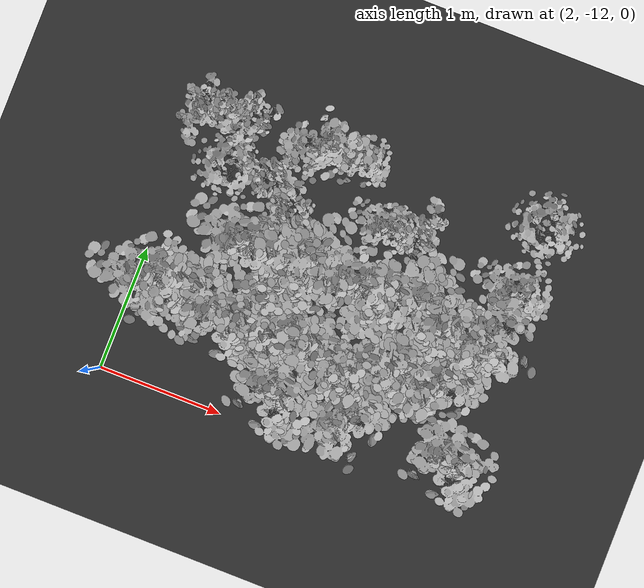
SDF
<sdf version="1.7">
 <world name="default">
  <model name="ground_plane">
   <static>1</static>
   <link name="link">
    <collision name="collision">
     <geometry><plane><normal>0 0 1</normal><size>100 100</size></plane></geometry>
     <surface>
      <contact><collide_bitmask>65535</collide_bitmask></contact>
      <friction><ode><mu>100</mu><mu2>50</mu2></ode></friction>
     </surface>
    </collision>
    <visual name="visual">
     <cast_shadows>0</cast_shadows>
     <geometry><plane><normal>0 0 1</normal><size>100 100</size></plane></geometry>
     <material>
      <ambient>0.2 0.2 0.2 1.0</ambient>
      <diffuse>0.2 0.2 0.2 1.0</diffuse>
      <specular>0.2 0.2 0.2 1.0</specular>
      <emissive>0.2 0.2 0.2 1.0</emissive>
     </material>
    </visual>
   </link>
  </model>
  <model name="ground">
   <pose>5 -0.5 0.01  3.141592654 0 0</pose>
   <static>true</static>
   <link name="body">
    <visual name="visual">
     <cast_shadows>0</cast_shadows>
     <geometry>
      <mesh><uri>file:///home/ifcosta/final_ws/src/cnn_line/worlds/models/ground.obj</uri></mesh>
     </geometry>
    </visual>
   </link>
  </model>
  <model name="plt_30008">
   <pose>2.4 -10.2 0.0127 0.0 0.0 0.20575</pose>
   <static>true</static>
   <link name="body">
    <visual name="visual">
     <geometry>
      <mesh><uri>file:///home/ifcosta/final_ws/src/cnn_line/worlds/models/plant35.obj</uri></mesh>
     </geometry>
    </visual>
   </link>
  </model>
  <model name="plt_30009">
   <pose>2.73 -10.2 0.0151 0.0 0.0 -1.1172</pose>
   <static>true</static>
   <link name="body">
    <visual name="visual">
     <geometry>
      <mesh><uri>file:///home/ifcosta/final_ws/src/cnn_line/worlds/models/plant33.obj</uri></mesh>
     </geometry>
    </visual>
   </link>
  </model>
  <model name="plt_30010">
   <pose>2.98 -10.3 0.0139 0.0 0.0 -0.027045</pose>
   <static>true</static>
   <link name="body">
    <visual name="visual">
     <geometry>
      <mesh><uri>file:///home/ifcosta/final_ws/src/cnn_line/worlds/models/plant34.obj</uri></mesh>
     </geometry>
    </visual>
   </link>
  </model>
  <model name="plt_30012">
   <pose>3.68 -10.2 0.0168 0.0 0.0 -0.72424</pose>
   <static>true</static>
   <link name="body">
    <visual name="visual">
     <geometry>
      <mesh><uri>file:///home/ifcosta/final_ws/src/cnn_line/worlds/models/plant31.obj</uri></mesh>
     </geometry>
    </visual>
   </link>
  </model>
  <model name="plt_30013">
   <pose>3.91 -10.2 0.0149 0.0 0.0 -1.329</pose>
   <static>true</static>
   <link name="body">
    <visual name="visual">
     <geometry>
      <mesh><uri>file:///home/ifcosta/final_ws/src/cnn_line/worlds/models/plant33.obj</uri></mesh>
     </geometry>
    </visual>
   </link>
  </model>
  <model name="plt_30016">
   <pose>4.79 -10.3 0.0151 0.0 0.0 0.59571</pose>
   <static>true</static>
   <link name="body">
    <visual name="visual">
     <geometry>
      <mesh><uri>file:///home/ifcosta/final_ws/src/cnn_line/worlds/models/plant36.obj</uri></mesh>
     </geometry>
    </visual>
   </link>
  </model>
  <model name="plt_30041">
   <pose>2.08 -9.76 0.0162 0.0 0.0 0.15549</pose>
   <static>true</static>
   <link name="body">
    <visual name="visual">
     <geometry>
      <mesh><uri>file:///home/ifcosta/final_ws/src/cnn_line/worlds/models/plant34.obj</uri></mesh>
     </geometry>
    </visual>
   </link>
  </model>
  <model name="plt_30042">
   <pose>2.45 -9.76 0.0149 0.0 0.0 0.59767</pose>
   <static>true</static>
   <link name="body">
    <visual name="visual">
     <geometry>
      <mesh><uri>file:///home/ifcosta/final_ws/src/cnn_line/worlds/models/plant33.obj</uri></mesh>
     </geometry>
    </visual>
   </link>
  </model>
  <model name="plt_30044">
   <pose>3.0 -9.77 0.0157 0.0 0.0 -2.7561</pose>
   <static>true</static>
   <link name="body">
    <visual name="visual">
     <geometry>
      <mesh><uri>file:///home/ifcosta/final_ws/src/cnn_line/worlds/models/plant30.obj</uri></mesh>
     </geometry>
    </visual>
   </link>
  </model>
  <model name="plt_30045">
   <pose>3.32 -9.77 0.0137 0.0 0.0 -0.80476</pose>
   <static>true</static>
   <link name="body">
    <visual name="visual">
     <geometry>
      <mesh><uri>file:///home/ifcosta/final_ws/src/cnn_line/worlds/models/plant31.obj</uri></mesh>
     </geometry>
    </visual>
   </link>
  </model>
  <model name="plt_30050">
   <pose>4.84 -9.76 0.0147 0.0 0.0 0.8638</pose>
   <static>true</static>
   <link name="body">
    <visual name="visual">
     <geometry>
      <mesh><uri>file:///home/ifcosta/final_ws/src/cnn_line/worlds/models/plant32.obj</uri></mesh>
     </geometry>
    </visual>
   </link>
  </model>
  <model name="plt_40113">
   <pose>3.34 -11.7 0.0191 0.0 0.0 -0.19418</pose>
   <static>true</static>
   <link name="body">
    <visual name="visual">
     <geometry>
      <mesh><uri>file:///home/ifcosta/final_ws/src/cnn_line/worlds/models/plant37.obj</uri></mesh>
     </geometry>
    </visual>
   </link>
  </model>
  <model name="plt_40115">
   <pose>3.92 -11.7 0.0164 0.0 0.0 1.3754</pose>
   <static>true</static>
   <link name="body">
    <visual name="visual">
     <geometry>
      <mesh><uri>file:///home/ifcosta/final_ws/src/cnn_line/worlds/models/plant37.obj</uri></mesh>
     </geometry>
    </visual>
   </link>
  </model>
  <model name="plt_40118">
   <pose>4.78 -11.7 0.0152 0.0 0.0 -0.088679</pose>
   <static>true</static>
   <link name="body">
    <visual name="visual">
     <geometry>
      <mesh><uri>file:///home/ifcosta/final_ws/src/cnn_line/worlds/models/plant37.obj</uri></mesh>
     </geometry>
    </visual>
   </link>
  </model>
  <model name="plt_40143">
   <pose>2.12 -11.2 0.0134 0.0 0.0 0.86882</pose>
   <static>true</static>
   <link name="body">
    <visual name="visual">
     <geometry>
      <mesh><uri>file:///home/ifcosta/final_ws/src/cnn_line/worlds/models/plant37.obj</uri></mesh>
     </geometry>
    </visual>
   </link>
  </model>
  <model name="plt_40144">
   <pose>2.4 -11.2 0.0156 0.0 0.0 -1.5349</pose>
   <static>true</static>
   <link name="body">
    <visual name="visual">
     <geometry>
      <mesh><uri>file:///home/ifcosta/final_ws/src/cnn_line/worlds/models/plant37.obj</uri></mesh>
     </geometry>
    </visual>
   </link>
  </model>
  <model name="plt_40145">
   <pose>2.76 -11.3 0.0132 0.0 0.0 0.16458</pose>
   <static>true</static>
   <link name="body">
    <visual name="visual">
     <geometry>
      <mesh><uri>file:///home/ifcosta/final_ws/src/cnn_line/worlds/models/plant37.obj</uri></mesh>
     </geometry>
    </visual>
   </link>
  </model>
  <model name="plt_40146">
   <pose>3.04 -11.2 0.0153 0.0 0.0 2.5518</pose>
   <static>true</static>
   <link name="body">
    <visual name="visual">
     <geometry>
      <mesh><uri>file:///home/ifcosta/final_ws/src/cnn_line/worlds/models/plant37.obj</uri></mesh>
     </geometry>
    </visual>
   </link>
  </model>
  <model name="plt_40147">
   <pose>3.25 -11.3 0.0127 0.0 0.0 1.0082</pose>
   <static>true</static>
   <link name="body">
    <visual name="visual">
     <geometry>
      <mesh><uri>file:///home/ifcosta/final_ws/src/cnn_line/worlds/models/plant37.obj</uri></mesh>
     </geometry>
    </visual>
   </link>
  </model>
  <model name="plt_40148">
   <pose>3.59 -11.3 0.0161 0.0 0.0 0.086142</pose>
   <static>true</static>
   <link name="body">
    <visual name="visual">
     <geometry>
      <mesh><uri>file:///home/ifcosta/final_ws/src/cnn_line/worlds/models/plant37.obj</uri></mesh>
     </geometry>
    </visual>
   </link>
  </model>
  <model name="plt_40149">
   <pose>3.91 -11.3 0.015 0.0 0.0 1.1582</pose>
   <static>true</static>
   <link name="body">
    <visual name="visual">
     <geometry>
      <mesh><uri>file:///home/ifcosta/final_ws/src/cnn_line/worlds/models/plant37.obj</uri></mesh>
     </geometry>
    </visual>
   </link>
  </model>
  <model name="plt_40150">
   <pose>4.14 -11.2 0.0139 0.0 0.0 -1.3742</pose>
   <static>true</static>
   <link name="body">
    <visual name="visual">
     <geometry>
      <mesh><uri>file:///home/ifcosta/final_ws/src/cnn_line/worlds/models/plant37.obj</uri></mesh>
     </geometry>
    </visual>
   </link>
  </model>
  <model name="plt_40151">
   <pose>4.48 -11.2 0.0131 0.0 0.0 1.0809</pose>
   <static>true</static>
   <link name="body">
    <visual name="visual">
     <geometry>
      <mesh><uri>file:///home/ifcosta/final_ws/src/cnn_line/worlds/models/plant37.obj</uri></mesh>
     </geometry>
    </visual>
   </link>
  </model>
  <model name="plt_40179">
   <pose>2.7 -10.7 0.0136 0.0 0.0 0.53554</pose>
   <static>true</static>
   <link name="body">
    <visual name="visual">
     <geometry>
      <mesh><uri>file:///home/ifcosta/final_ws/src/cnn_line/worlds/models/plant37.obj</uri></mesh>
     </geometry>
    </visual>
   </link>
  </model>
  <model name="plt_40180">
   <pose>3.01 -10.8 0.0169 0.0 0.0 -1.0357</pose>
   <static>true</static>
   <link name="body">
    <visual name="visual">
     <geometry>
      <mesh><uri>file:///home/ifcosta/final_ws/src/cnn_line/worlds/models/plant37.obj</uri></mesh>
     </geometry>
    </visual>
   </link>
  </model>
  <model name="plt_40181">
   <pose>3.23 -10.7 0.0144 0.0 0.0 -1.0352</pose>
   <static>true</static>
   <link name="body">
    <visual name="visual">
     <geometry>
      <mesh><uri>file:///home/ifcosta/final_ws/src/cnn_line/worlds/models/plant37.obj</uri></mesh>
     </geometry>
    </visual>
   </link>
  </model>
  <model name="plt_40182">
   <pose>3.61 -10.7 0.0136 0.0 0.0 0.47132</pose>
   <static>true</static>
   <link name="body">
    <visual name="visual">
     <geometry>
      <mesh><uri>file:///home/ifcosta/final_ws/src/cnn_line/worlds/models/plant37.obj</uri></mesh>
     </geometry>
    </visual>
   </link>
  </model>
  <model name="plt_40183">
   <pose>3.88 -10.7 0.0134 0.0 0.0 -1.4023</pose>
   <static>true</static>
   <link name="body">
    <visual name="visual">
     <geometry>
      <mesh><uri>file:///home/ifcosta/final_ws/src/cnn_line/worlds/models/plant37.obj</uri></mesh>
     </geometry>
    </visual>
   </link>
  </model>
  <model name="plt_40184">
   <pose>4.21 -10.7 0.0164 0.0 0.0 -0.78049</pose>
   <static>true</static>
   <link name="body">
    <visual name="visual">
     <geometry>
      <mesh><uri>file:///home/ifcosta/final_ws/src/cnn_line/worlds/models/plant37.obj</uri></mesh>
     </geometry>
    </visual>
   </link>
  </model>
  <model name="plt_40185">
   <pose>4.5 -10.8 0.0145 0.0 0.0 -0.089928</pose>
   <static>true</static>
   <link name="body">
    <visual name="visual">
     <geometry>
      <mesh><uri>file:///home/ifcosta/final_ws/src/cnn_line/worlds/models/plant37.obj</uri></mesh>
     </geometry>
    </visual>
   </link>
  </model>
  <model name="plt_40186">
   <pose>4.79 -10.7 0.0155 0.0 0.0 2.1214</pose>
   <static>true</static>
   <link name="body">
    <visual name="visual">
     <geometry>
      <mesh><uri>file:///home/ifcosta/final_ws/src/cnn_line/worlds/models/plant37.obj</uri></mesh>
     </geometry>
    </visual>
   </link>
  </model>
 </world>
</sdf>
